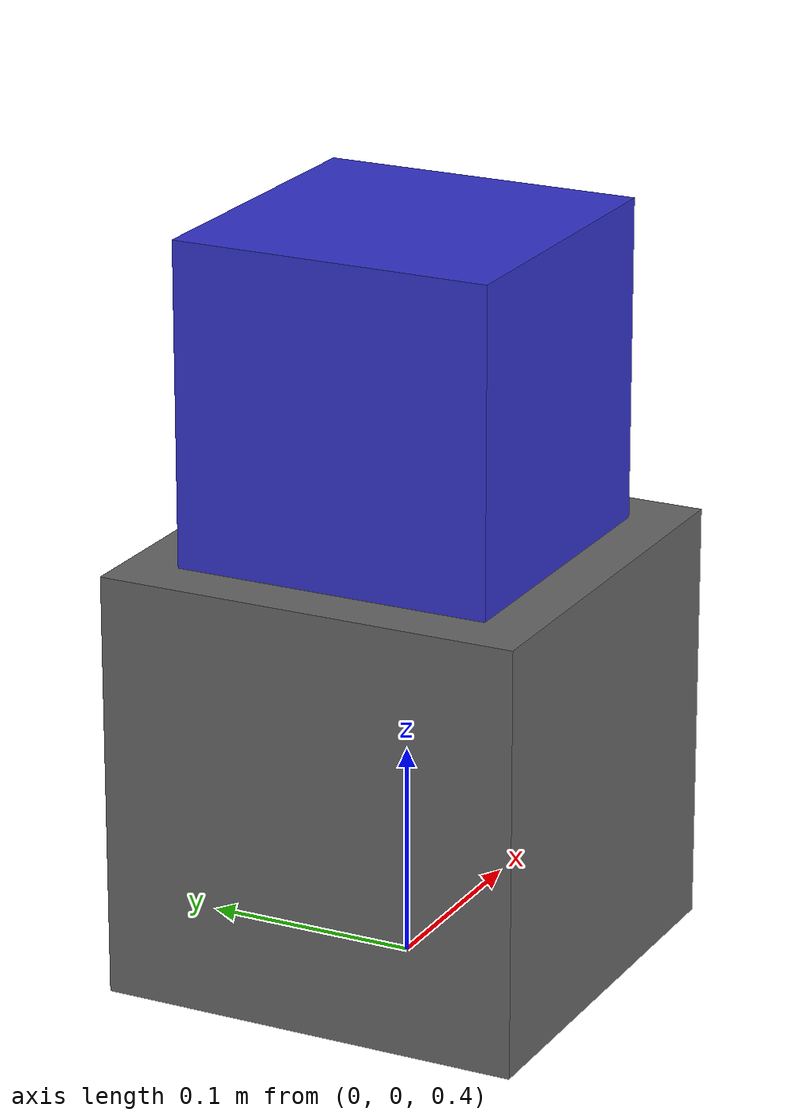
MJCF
<mujoco model="head_robot">
  <option timestep="0.002" gravity="0 0 -9.81" integrator="RK4"/>

  <asset>
    <material name="base_mat" rgba="0.4 0.4 0.4 1"/>
    <material name="head_mat" rgba="0.2 0.2 0.8 1"/>
    <material name="camera_mat" rgba="0.05 0.05 0.05 1"/>
  </asset>

  <worldbody>
    <!-- Fixed base attached to world -->
    <body name="base" pos="0 0 0.5">
      <inertial pos="0 0 0" mass="100" diaginertia="1 1 1"/>
      <geom name="base_geom" type="box" size="0.1 0.1 0.1" material="base_mat"/>

      <!-- Head with revolute joint (Z-axis rotation) -->
      <body name="head" pos="0 0 0.175">
        <!-- Servo joint with damping -->
        <joint name="head_joint" type="hinge" axis="0 0 1" damping="0.5" armature="0.02"/>
        <inertial pos="0 0 0" mass="0.5" diaginertia="0.002 0.002 0.001"/>
        <geom name="head_geom" type="box" size="0.075 0.075 0.075" material="head_mat"/>

        <!-- Camera lens (off-center mass affects dynamics) -->
        <geom name="camera_lens" type="cylinder" size="0.015 0.01" pos="0 0.085 0"
              euler="90 0 0" material="camera_mat" mass="0.05"/>
      </body>
    </body>
  </worldbody>

  <actuator>
    <!-- Position-controlled servo with realistic response -->
    <position name="head_motor" joint="head_joint" kp="100"/>
  </actuator>
</mujoco>
